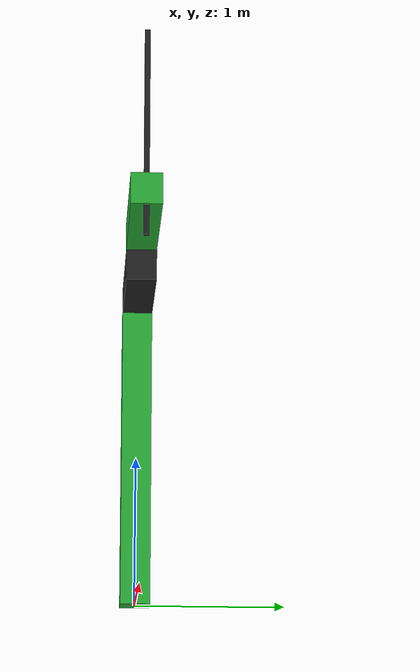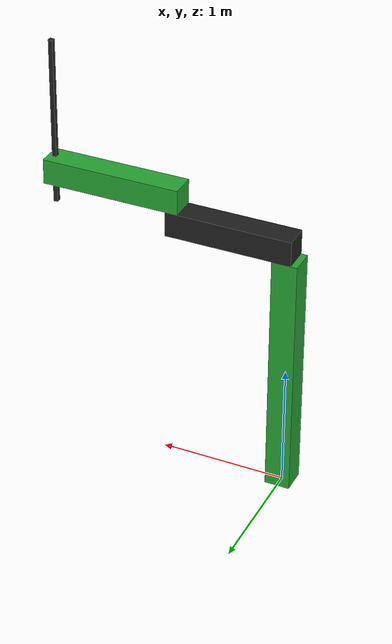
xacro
<?xml version="1.0"?>
<!-- Revolute-Revolute Manipulator -->
<!--
Copied and modified from ROS1 example -
https://github.com/ros-simulation/gazebo_ros_demos/blob/kinetic-devel/rrbot_description/urdf/rrbot.xacro
-->
<robot xmlns:xacro="http://www.ros.org/wiki/xacro" name="3dof_robot">
  <xacro:arg name="prefix" default="" />

  <!-- Import RRBot macro -->
  <xacro:include filename="$(find rrbot_description)/urdf/rrbot_description.urdf.xacro" />

  <!-- Import Rviz colors -->
  <xacro:include filename="$(find rrbot_description)/gazebo/rrbot.materials.xacro" />

  <!-- Import RRBot ros2_control description -->
  <xacro:include filename="$(find rrbot_description)/ros2_control/rrbot.ros2_control.xacro" />

  <xacro:include filename="$(find rrbot_description)/gazebo/rrbot.gazebo.xacro" />

  <!-- Used for fixing robot -->
  <link name="world"/>
  <gazebo reference="world">
    <static>true</static>
  </gazebo>

  <xacro:rrbot parent="world" prefix="$(arg prefix)">
    <origin xyz="0 0 0" rpy="0 0 0" />
  </xacro:rrbot>

  <xacro:rrbot_gazebo prefix="$(arg prefix)" />

  <xacro:rrbot_ros2_control
    name="SCARA" prefix="$(arg prefix)" />

</robot>

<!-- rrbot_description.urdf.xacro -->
<robot xmlns:xacro="http://www.ros.org/wiki/xacro">

  <xacro:macro name="rrbot" params="parent prefix *origin">

  <!-- Constants for robot dimensions -->
  <xacro:property name="mass" value="1" /> <!-- arbitrary value for mass -->
  <xacro:property name="width" value="0.2" /> <!-- Square dimensions (widthxwidth) of beams -->
  <xacro:property name="height1" value="2" /> <!-- Link 1 -->
  <xacro:property name="height2" value="1" /> <!-- Link 2 -->
  <xacro:property name="height3" value="1.1" /> <!-- Link 3 -->
  <xacro:property name="prismatic_width" value="0.035" /> <!-- Thin width for prismatic link -->
  <xacro:property name="camera_link" value="0.05" /> <!-- Size of square 'camera' box -->
  <xacro:property name="axel_offset" value="0.05" /> <!-- Space btw top of beam and the each joint -->
  <xacro:property name="width_offset" value="0.037" /> <!-- Offset of prismatic link passing through the width -->
  <xacro:property name="prismatic_offset" value="${axel_offset*2 + width_offset + width}" /> <!-- This is the descended length in the zero position of the prismatic -->
  <xacro:property name="height4" value="${1 + prismatic_offset}" /> <!-- Link4 -->

  <joint name="${prefix}base_joint" type="fixed">
    <xacro:insert_block name="origin" />
    <parent link="${parent}"/>
    <child link="${prefix}base_link" />
  </joint>

  <!-- Base Link -->
  <link name="${prefix}base_link">
    <collision>
      <origin xyz="0 0 ${height1/2}" rpy="0 0 0"/>
      <geometry>
        <box size="${width} ${width} ${height1}"/>
      </geometry>
    </collision>

    <visual>
      <origin xyz="0 0 ${height1/2}" rpy="0 0 0"/>
      <geometry>
        <box size="${width} ${width} ${height1}"/>
      </geometry>
    </visual>

    <inertial>
      <origin xyz="0 0 ${height1/2}" rpy="0 0 0"/>
      <mass value="${mass}"/>
      <inertia
        ixx="${mass / 12.0 * (width*width + height1*height1)}" ixy="0.0" ixz="0.0"
        iyy="${mass / 12.0 * (height1*height1 + width*width)}" iyz="0.0"
        izz="${mass / 12.0 * (width*width + width*width)}"/>
      </inertial>
    </link>

    <joint name="${prefix}joint1" type="revolute">
      <parent link="${prefix}base_link"/>
      <child link="${prefix}link1"/>
      <!-- Set limits of revolute joint to 0deg to +180deg, 1000 N effort limit, velocity of 180 rad/s  -->
      <limit lower="0" upper="3.14159" effort="1000" velocity="6"/>
      <origin xyz="0 0 ${height1 + axel_offset*2}" rpy="0 1.5708 0"/>
      <axis xyz="-1 0 0"/>
      <dynamics damping="0.7"/>
    </joint>

    <!-- Middle Link -->
    <link name="${prefix}link1">
      <collision>
        <origin xyz="0 0 ${height2/2 - axel_offset}" rpy="0 0 0"/>
        <geometry>
          <box size="${width} ${width} ${height2}"/>
        </geometry>
      </collision>

      <visual>
        <origin xyz="0 0 ${height2/2 - axel_offset}" rpy="0 0 0"/>
        <geometry>
          <box size="${width} ${width} ${height2}"/>
        </geometry>
      </visual>

      <inertial>
        <origin xyz="0 0 ${height2/2 - axel_offset}" rpy="0 0 0"/>
        <mass value="${mass}"/>
        <inertia
          ixx="${mass / 12.0 * (width*width + height2*height2)}" ixy="0.0" ixz="0.0"
          iyy="${mass / 12.0 * (height2*height2 + width*width)}" iyz="0.0"
          izz="${mass / 12.0 * (width*width + width*width)}"/>
        </inertial>
      </link>

      <joint name="${prefix}joint2" type="revolute">
        <parent link="${prefix}link1"/>
        <child link="${prefix}link2"/>
        <!-- Set limits of revolute joint to -150deg to +150deg, 1000 N effort limit, velocity of 180 rad/s  -->
        <limit lower="-2.61799" upper="2.61799" effort="1000" velocity="6"/>
        <origin xyz="${width * -1} 0 ${height2 - axel_offset*2}" rpy="0 0 0"/>
        <axis xyz="-1 0 0"/>
        <dynamics damping="0.7"/>
      </joint>

      <!-- Top Link -->
      <link name="${prefix}link2">
        <collision>
          <origin xyz="0 0 ${height3/2 - axel_offset}" rpy="0 0 0"/>
          <geometry>
            <box size="${width} ${width} ${height3}"/>
          </geometry>
        </collision>

        <visual>
          <origin xyz="0 0 ${height3/2 - axel_offset}" rpy="0 0 0"/>
          <geometry>
            <box size="${width} ${width} ${height3}"/>
          </geometry>
        </visual>

        <inertial>
          <origin xyz="0 0 ${height3/2 - axel_offset}" rpy="0 0 0"/>
          <mass value="${mass}"/>
          <inertia
            ixx="${mass / 12.0 * (width*width + height3*height3)}" ixy="0.0" ixz="0.0"
            iyy="${mass / 12.0 * (height3*height3 + width*width)}" iyz="0.0"
            izz="${mass / 12.0 * (width*width + width*width)}"/>
          </inertial>
      </link>

      <!-- Tool Joint -->
      <joint name="${prefix}tool_joint" type="prismatic">
        <parent link="${prefix}link2"/>
        <child link="${prefix}tool_link" />
        <!-- Set limits of prismatic joint -->
        <limit lower="${prismatic_offset * -1}" upper="1.1" effort="1000" velocity="1"/>
        <origin xyz="${prismatic_offset - height4} 0 ${height3 - axel_offset*2}" rpy="0 1.5708 0" />
        <axis xyz="0 0 1"/>
        <dynamics damping="0.7"/>
      </joint>

      <!-- Tool Link -->
      <link name="${prefix}tool_link">
        <collision>
          <origin xyz="0 0 ${height4/2 - axel_offset}" rpy="0 0 0"/>
          <geometry>
            <box size="${prismatic_width} ${prismatic_width} ${height4}"/>
          </geometry>
        </collision>

        <visual>
          <origin xyz="0 0 ${height4/2 - axel_offset}" rpy="0 0 0"/>
          <geometry>
            <box size="${prismatic_width} ${prismatic_width} ${height4}"/>
          </geometry>
        </visual>

        <inertial>
          <origin xyz="0 0 ${height4/2 - axel_offset}" rpy="0 0 0"/>
          <mass value="${mass}"/>
          <inertia
            ixx="${mass / 12.0 * (prismatic_width*prismatic_width + height4*height4)}" ixy="0.0" ixz="0.0"
            iyy="${mass / 12.0 * (height4*height4 + prismatic_width*prismatic_width)}" iyz="0.0"
            izz="${mass / 12.0 * (prismatic_width*prismatic_width + prismatic_width*prismatic_width)}"/>
          </inertial>
      </link>

  </xacro:macro>

</robot>
